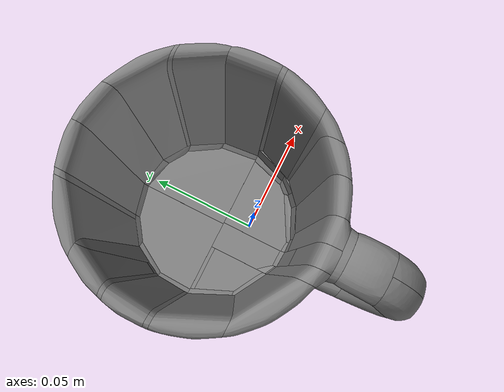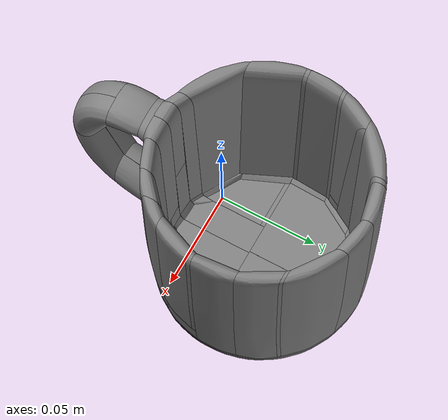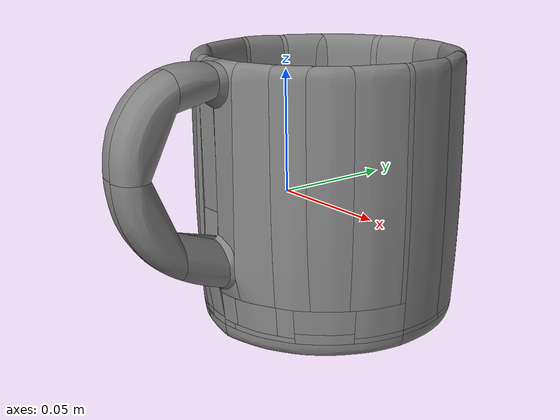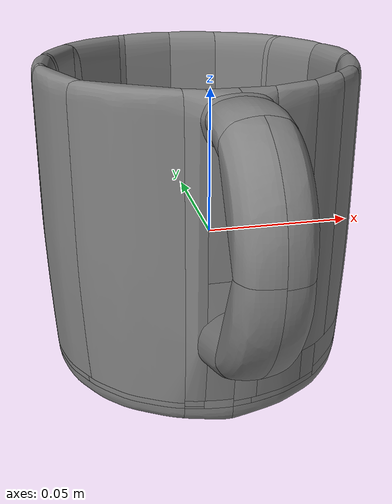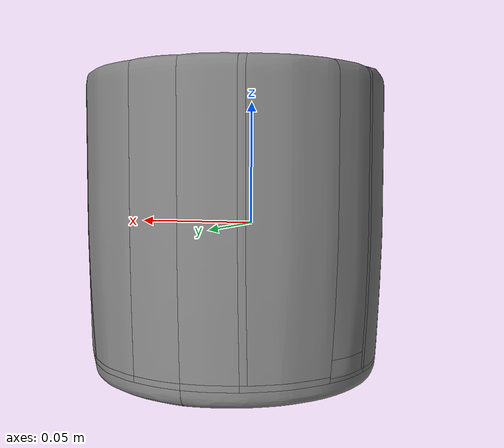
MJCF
<?xml version="1.0" ?>
<mujoco model="039_mug_0">
  <asset>
    <mesh name="039_mug_0_mesh" file="039_mug_0.stl" scale="0.08 0.08 0.08"/>
    <mesh name="039_mug_0_part_0" file="decomposed/039_mug_0_decomposed_0.stl" scale="0.08 0.08 0.08"/>
    <mesh name="039_mug_0_part_1" file="decomposed/039_mug_0_decomposed_1.stl" scale="0.08 0.08 0.08"/>
    <mesh name="039_mug_0_part_2" file="decomposed/039_mug_0_decomposed_2.stl" scale="0.08 0.08 0.08"/>
    <mesh name="039_mug_0_part_3" file="decomposed/039_mug_0_decomposed_3.stl" scale="0.08 0.08 0.08"/>
    <mesh name="039_mug_0_part_4" file="decomposed/039_mug_0_decomposed_4.stl" scale="0.08 0.08 0.08"/>
    <mesh name="039_mug_0_part_5" file="decomposed/039_mug_0_decomposed_5.stl" scale="0.08 0.08 0.08"/>
    <mesh name="039_mug_0_part_6" file="decomposed/039_mug_0_decomposed_6.stl" scale="0.08 0.08 0.08"/>
    <mesh name="039_mug_0_part_7" file="decomposed/039_mug_0_decomposed_7.stl" scale="0.08 0.08 0.08"/>
    <mesh name="039_mug_0_part_8" file="decomposed/039_mug_0_decomposed_8.stl" scale="0.08 0.08 0.08"/>
    <mesh name="039_mug_0_part_9" file="decomposed/039_mug_0_decomposed_9.stl" scale="0.08 0.08 0.08"/>
    <mesh name="039_mug_0_part_10" file="decomposed/039_mug_0_decomposed_10.stl" scale="0.08 0.08 0.08"/>
    <mesh name="039_mug_0_part_11" file="decomposed/039_mug_0_decomposed_11.stl" scale="0.08 0.08 0.08"/>
    <mesh name="039_mug_0_part_12" file="decomposed/039_mug_0_decomposed_12.stl" scale="0.08 0.08 0.08"/>
    <mesh name="039_mug_0_part_13" file="decomposed/039_mug_0_decomposed_13.stl" scale="0.08 0.08 0.08"/>
    <mesh name="039_mug_0_part_14" file="decomposed/039_mug_0_decomposed_14.stl" scale="0.08 0.08 0.08"/>
    <mesh name="039_mug_0_part_15" file="decomposed/039_mug_0_decomposed_15.stl" scale="0.08 0.08 0.08"/>
    <mesh name="039_mug_0_part_16" file="decomposed/039_mug_0_decomposed_16.stl" scale="0.08 0.08 0.08"/>
    <mesh name="039_mug_0_part_17" file="decomposed/039_mug_0_decomposed_17.stl" scale="0.08 0.08 0.08"/>
    <mesh name="039_mug_0_part_18" file="decomposed/039_mug_0_decomposed_18.stl" scale="0.08 0.08 0.08"/>
    <mesh name="039_mug_0_part_19" file="decomposed/039_mug_0_decomposed_19.stl" scale="0.08 0.08 0.08"/>
    <mesh name="039_mug_0_part_20" file="decomposed/039_mug_0_decomposed_20.stl" scale="0.08 0.08 0.08"/>
    <mesh name="039_mug_0_part_21" file="decomposed/039_mug_0_decomposed_21.stl" scale="0.08 0.08 0.08"/>
    <mesh name="039_mug_0_part_22" file="decomposed/039_mug_0_decomposed_22.stl" scale="0.08 0.08 0.08"/>
    <mesh name="039_mug_0_part_23" file="decomposed/039_mug_0_decomposed_23.stl" scale="0.08 0.08 0.08"/>
    <mesh name="039_mug_0_part_24" file="decomposed/039_mug_0_decomposed_24.stl" scale="0.08 0.08 0.08"/>
    <mesh name="039_mug_0_part_25" file="decomposed/039_mug_0_decomposed_25.stl" scale="0.08 0.08 0.08"/>
    <mesh name="039_mug_0_part_26" file="decomposed/039_mug_0_decomposed_26.stl" scale="0.08 0.08 0.08"/>
    <mesh name="039_mug_0_part_27" file="decomposed/039_mug_0_decomposed_27.stl" scale="0.08 0.08 0.08"/>
    <mesh name="039_mug_0_part_28" file="decomposed/039_mug_0_decomposed_28.stl" scale="0.08 0.08 0.08"/>
    <mesh name="039_mug_0_part_29" file="decomposed/039_mug_0_decomposed_29.stl" scale="0.08 0.08 0.08"/>
    <mesh name="039_mug_0_part_30" file="decomposed/039_mug_0_decomposed_30.stl" scale="0.08 0.08 0.08"/>
    <mesh name="039_mug_0_part_31" file="decomposed/039_mug_0_decomposed_31.stl" scale="0.08 0.08 0.08"/>
    <mesh name="039_mug_0_part_32" file="decomposed/039_mug_0_decomposed_32.stl" scale="0.08 0.08 0.08"/>
    <mesh name="039_mug_0_part_33" file="decomposed/039_mug_0_decomposed_33.stl" scale="0.08 0.08 0.08"/>
    <mesh name="039_mug_0_part_34" file="decomposed/039_mug_0_decomposed_34.stl" scale="0.08 0.08 0.08"/>
    <mesh name="039_mug_0_part_35" file="decomposed/039_mug_0_decomposed_35.stl" scale="0.08 0.08 0.08"/>
    <mesh name="039_mug_0_part_36" file="decomposed/039_mug_0_decomposed_36.stl" scale="0.08 0.08 0.08"/>
    <mesh name="039_mug_0_part_37" file="decomposed/039_mug_0_decomposed_37.stl" scale="0.08 0.08 0.08"/>
    <mesh name="039_mug_0_part_38" file="decomposed/039_mug_0_decomposed_38.stl" scale="0.08 0.08 0.08"/>
    <mesh name="039_mug_0_part_39" file="decomposed/039_mug_0_decomposed_39.stl" scale="0.08 0.08 0.08"/>
    <mesh name="039_mug_0_part_40" file="decomposed/039_mug_0_decomposed_40.stl" scale="0.08 0.08 0.08"/>
    <mesh name="039_mug_0_part_41" file="decomposed/039_mug_0_decomposed_41.stl" scale="0.08 0.08 0.08"/>
    <mesh name="039_mug_0_part_42" file="decomposed/039_mug_0_decomposed_42.stl" scale="0.08 0.08 0.08"/>
    <mesh name="039_mug_0_part_43" file="decomposed/039_mug_0_decomposed_43.stl" scale="0.08 0.08 0.08"/>
    <mesh name="039_mug_0_part_44" file="decomposed/039_mug_0_decomposed_44.stl" scale="0.08 0.08 0.08"/>
    <mesh name="039_mug_0_part_45" file="decomposed/039_mug_0_decomposed_45.stl" scale="0.08 0.08 0.08"/>
    <mesh name="039_mug_0_part_46" file="decomposed/039_mug_0_decomposed_46.stl" scale="0.08 0.08 0.08"/>
    <mesh name="039_mug_0_part_47" file="decomposed/039_mug_0_decomposed_47.stl" scale="0.08 0.08 0.08"/>
    <mesh name="039_mug_0_part_48" file="decomposed/039_mug_0_decomposed_48.stl" scale="0.08 0.08 0.08"/>
    <mesh name="039_mug_0_part_49" file="decomposed/039_mug_0_decomposed_49.stl" scale="0.08 0.08 0.08"/>
    <mesh name="039_mug_0_part_50" file="decomposed/039_mug_0_decomposed_50.stl" scale="0.08 0.08 0.08"/>
    <mesh name="039_mug_0_part_51" file="decomposed/039_mug_0_decomposed_51.stl" scale="0.08 0.08 0.08"/>
    <mesh name="039_mug_0_part_52" file="decomposed/039_mug_0_decomposed_52.stl" scale="0.08 0.08 0.08"/>
    <mesh name="039_mug_0_part_53" file="decomposed/039_mug_0_decomposed_53.stl" scale="0.08 0.08 0.08"/>
    <mesh name="039_mug_0_part_54" file="decomposed/039_mug_0_decomposed_54.stl" scale="0.08 0.08 0.08"/>
    <mesh name="039_mug_0_part_55" file="decomposed/039_mug_0_decomposed_55.stl" scale="0.08 0.08 0.08"/>
    <mesh name="039_mug_0_part_56" file="decomposed/039_mug_0_decomposed_56.stl" scale="0.08 0.08 0.08"/>
    <mesh name="039_mug_0_part_57" file="decomposed/039_mug_0_decomposed_57.stl" scale="0.08 0.08 0.08"/>
    <mesh name="039_mug_0_part_58" file="decomposed/039_mug_0_decomposed_58.stl" scale="0.08 0.08 0.08"/>
    <mesh name="039_mug_0_part_59" file="decomposed/039_mug_0_decomposed_59.stl" scale="0.08 0.08 0.08"/>
    <mesh name="039_mug_0_part_60" file="decomposed/039_mug_0_decomposed_60.stl" scale="0.08 0.08 0.08"/>
    <mesh name="039_mug_0_part_61" file="decomposed/039_mug_0_decomposed_61.stl" scale="0.08 0.08 0.08"/>
  </asset>
  <worldbody>
    <body name="039_mug_0">
      <geom name="039_mug_0_geom_0" type="mesh" mesh="039_mug_0_part_0"/>
      <geom name="039_mug_0_geom_1" type="mesh" mesh="039_mug_0_part_1"/>
      <geom name="039_mug_0_geom_2" type="mesh" mesh="039_mug_0_part_2"/>
      <geom name="039_mug_0_geom_3" type="mesh" mesh="039_mug_0_part_3"/>
      <geom name="039_mug_0_geom_4" type="mesh" mesh="039_mug_0_part_4"/>
      <geom name="039_mug_0_geom_5" type="mesh" mesh="039_mug_0_part_5"/>
      <geom name="039_mug_0_geom_6" type="mesh" mesh="039_mug_0_part_6"/>
      <geom name="039_mug_0_geom_7" type="mesh" mesh="039_mug_0_part_7"/>
      <geom name="039_mug_0_geom_8" type="mesh" mesh="039_mug_0_part_8"/>
      <geom name="039_mug_0_geom_9" type="mesh" mesh="039_mug_0_part_9"/>
      <geom name="039_mug_0_geom_10" type="mesh" mesh="039_mug_0_part_10"/>
      <geom name="039_mug_0_geom_11" type="mesh" mesh="039_mug_0_part_11"/>
      <geom name="039_mug_0_geom_12" type="mesh" mesh="039_mug_0_part_12"/>
      <geom name="039_mug_0_geom_13" type="mesh" mesh="039_mug_0_part_13"/>
      <geom name="039_mug_0_geom_14" type="mesh" mesh="039_mug_0_part_14"/>
      <geom name="039_mug_0_geom_15" type="mesh" mesh="039_mug_0_part_15"/>
      <geom name="039_mug_0_geom_16" type="mesh" mesh="039_mug_0_part_16"/>
      <geom name="039_mug_0_geom_17" type="mesh" mesh="039_mug_0_part_17"/>
      <geom name="039_mug_0_geom_18" type="mesh" mesh="039_mug_0_part_18"/>
      <geom name="039_mug_0_geom_19" type="mesh" mesh="039_mug_0_part_19"/>
      <geom name="039_mug_0_geom_20" type="mesh" mesh="039_mug_0_part_20"/>
      <geom name="039_mug_0_geom_21" type="mesh" mesh="039_mug_0_part_21"/>
      <geom name="039_mug_0_geom_22" type="mesh" mesh="039_mug_0_part_22"/>
      <geom name="039_mug_0_geom_23" type="mesh" mesh="039_mug_0_part_23"/>
      <geom name="039_mug_0_geom_24" type="mesh" mesh="039_mug_0_part_24"/>
      <geom name="039_mug_0_geom_25" type="mesh" mesh="039_mug_0_part_25"/>
      <geom name="039_mug_0_geom_26" type="mesh" mesh="039_mug_0_part_26"/>
      <geom name="039_mug_0_geom_27" type="mesh" mesh="039_mug_0_part_27"/>
      <geom name="039_mug_0_geom_28" type="mesh" mesh="039_mug_0_part_28"/>
      <geom name="039_mug_0_geom_29" type="mesh" mesh="039_mug_0_part_29"/>
      <geom name="039_mug_0_geom_30" type="mesh" mesh="039_mug_0_part_30"/>
      <geom name="039_mug_0_geom_31" type="mesh" mesh="039_mug_0_part_31"/>
      <geom name="039_mug_0_geom_32" type="mesh" mesh="039_mug_0_part_32"/>
      <geom name="039_mug_0_geom_33" type="mesh" mesh="039_mug_0_part_33"/>
      <geom name="039_mug_0_geom_34" type="mesh" mesh="039_mug_0_part_34"/>
      <geom name="039_mug_0_geom_35" type="mesh" mesh="039_mug_0_part_35"/>
      <geom name="039_mug_0_geom_36" type="mesh" mesh="039_mug_0_part_36"/>
      <geom name="039_mug_0_geom_37" type="mesh" mesh="039_mug_0_part_37"/>
      <geom name="039_mug_0_geom_38" type="mesh" mesh="039_mug_0_part_38"/>
      <geom name="039_mug_0_geom_39" type="mesh" mesh="039_mug_0_part_39"/>
      <geom name="039_mug_0_geom_40" type="mesh" mesh="039_mug_0_part_40"/>
      <geom name="039_mug_0_geom_41" type="mesh" mesh="039_mug_0_part_41"/>
      <geom name="039_mug_0_geom_42" type="mesh" mesh="039_mug_0_part_42"/>
      <geom name="039_mug_0_geom_43" type="mesh" mesh="039_mug_0_part_43"/>
      <geom name="039_mug_0_geom_44" type="mesh" mesh="039_mug_0_part_44"/>
      <geom name="039_mug_0_geom_45" type="mesh" mesh="039_mug_0_part_45"/>
      <geom name="039_mug_0_geom_46" type="mesh" mesh="039_mug_0_part_46"/>
      <geom name="039_mug_0_geom_47" type="mesh" mesh="039_mug_0_part_47"/>
      <geom name="039_mug_0_geom_48" type="mesh" mesh="039_mug_0_part_48"/>
      <geom name="039_mug_0_geom_49" type="mesh" mesh="039_mug_0_part_49"/>
      <geom name="039_mug_0_geom_50" type="mesh" mesh="039_mug_0_part_50"/>
      <geom name="039_mug_0_geom_51" type="mesh" mesh="039_mug_0_part_51"/>
      <geom name="039_mug_0_geom_52" type="mesh" mesh="039_mug_0_part_52"/>
      <geom name="039_mug_0_geom_53" type="mesh" mesh="039_mug_0_part_53"/>
      <geom name="039_mug_0_geom_54" type="mesh" mesh="039_mug_0_part_54"/>
      <geom name="039_mug_0_geom_55" type="mesh" mesh="039_mug_0_part_55"/>
      <geom name="039_mug_0_geom_56" type="mesh" mesh="039_mug_0_part_56"/>
      <geom name="039_mug_0_geom_57" type="mesh" mesh="039_mug_0_part_57"/>
      <geom name="039_mug_0_geom_58" type="mesh" mesh="039_mug_0_part_58"/>
      <geom name="039_mug_0_geom_59" type="mesh" mesh="039_mug_0_part_59"/>
      <geom name="039_mug_0_geom_60" type="mesh" mesh="039_mug_0_part_60"/>
      <geom name="039_mug_0_geom_61" type="mesh" mesh="039_mug_0_part_61"/>
    </body>
  </worldbody>
</mujoco>
